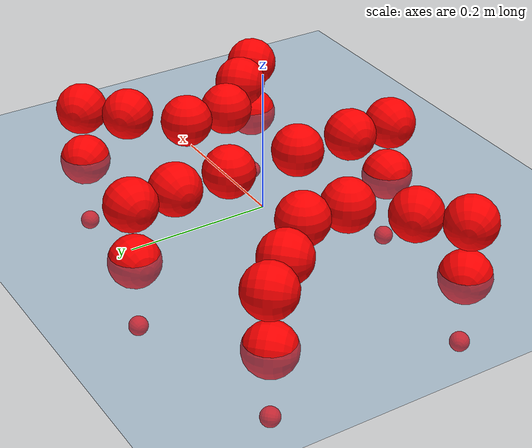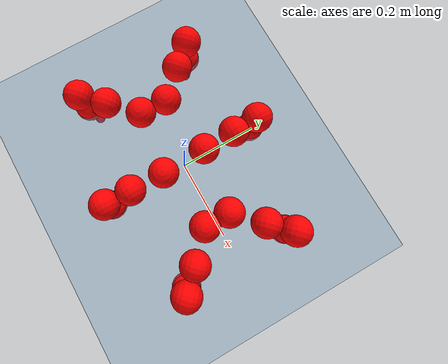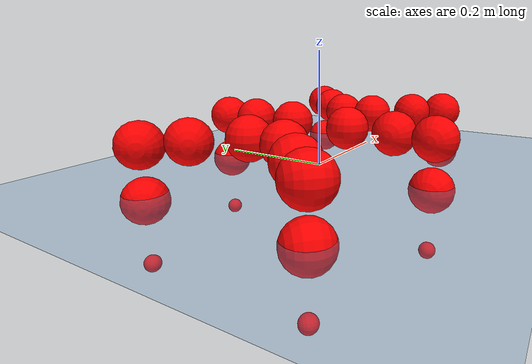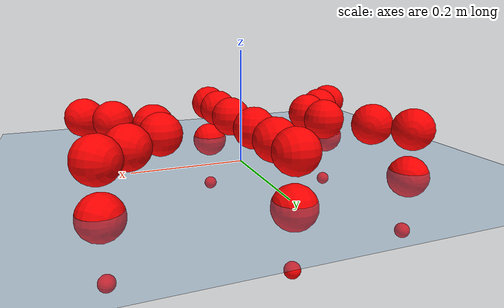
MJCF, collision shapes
<mujoco model="Golem">
  <compiler angle="radian" assetdir="assets" balanceinertia="true" inertiafromgeom="false"/>

  <option timestep="0.005" density="1.2" viscosity="2e-05"/>

  <size nkey="1"/>

  <visual>
    <quality shadowsize="8192"/>
    <map shadowclip="0.5"/>
  </visual>

  <default>
    <default class="/">
      <joint armature="0.01" damping="0.01" frictionloss="0.01"/>
      <geom contype="0" conaffinity="0" group="1" solref="-1000 -80"/>
      <site size="0.01 0.005 0.005" group="5"/>
      <general forcelimited="true" biastype="affine" gainprm="25" biasprm="0 -25 -0.5"/>
      <default class="visual">
        <geom type="mesh" group="2"/>
      </default>
      <default class="collision">
        <geom group="3"/>
      </default>
      <default class="foot">
        <geom size="0.01 0 0" condim="6" group="4" priority="1" solimp="0.015 1 0.01"/>
      </default>
      <default class="reward_collision_sphere">
        <geom group="5" rgba="1 0 0 1"/>
      </default>
    </default>
  </default>

  <asset>
    <texture type="skybox" colorspace="auto" name="//unnamed_texture_0" builtin="gradient" rgb1="0.95 0.95 0.95" rgb2="0.95 0.95 0.95" width="100" height="600"/>
    <texture type="2d" colorspace="auto" name="texplane" builtin="checker" rgb1="0.345 0.575 0.748" rgb2="0.345 0.575 0.748" markrgb="1 1 1" width="512" height="512"/>
    <material name="MatPlane" class="/" texture="texplane" texuniform="true" texrepeat="2 2" specular="0.9"/>
    <mesh name="body" class="/" file="body.stl" scale="0.001 0.001 0.001"/>
    <mesh name="coxa" class="/" file="coxa.stl" scale="0.001 0.001 0.001"/>
    <mesh name="femur" class="/" file="femur.stl" scale="0.001 0.001 0.001"/>
    <mesh name="tibia" class="/" file="tibia.stl" scale="0.001 0.001 0.001"/>
    <mesh name="tarsus" class="/" file="tarsus.stl" scale="0.001 0.001 0.001"/>
  </asset>

  <worldbody>
    <geom name="floor" class="/" size="100 100 0.125" type="plane" group="0" material="MatPlane"/>
    <light name="toplight_shadow" class="/" pos="0 0 5" dir="0.0990148 0.0990148 -0.990148" type="directional" ambient="0.04 0.04 0.04" diffuse="0.55 0.55 0.55" specular="0.12 0.12 0.12"/>
    <light name="toplight_fill" class="/" pos="0 0 5" dir="0.0990148 0.0990148 -0.990148" type="directional" castshadow="false" ambient="0.04 0.04 0.04" diffuse="0.3 0.3 0.3" specular="0.08 0.08 0.08"/>
    <body name="trunk" pos="-0.000400183 0.000271646 0.00030435" quat="1 -4.54226e-05 -5.42588e-05 0.000141535">
      <inertial pos="0.000511119 -0.00107397 -0.00154547" quat="0.999991 -0.000747427 0.00355932 0.00198022" mass="2.81933" diaginertia="0.00884855 0.00104364 0.0180074"/>
      <joint name="//unnamed_joint_0" type="free"/>
      <geom name="//unnamed_geom_1" class="/" pos="0 0 0.0716804" quat="1 0 0 0" type="mesh" rgba="0.9 0.9 0.9 1" mesh="body"/>
      <site name="imu" class="/" pos="0.127714 0.00222746 0.104882" size="0.00906779"/>
      <camera name="track" class="/" pos="0 -1.26505 0" quat="0.707107 0.707107 0 0" mode="trackcom"/>
      <camera name="ego_camera" class="/" pos="0.125815 0 0.112001" quat="-0.5 -0.5 0.5 0.5"/>
      <body name="coxa_RR" pos="-0.172701 -0.0531872 0.0730911" quat="0.382723 -2.8526e-05 -0.000111068 -0.923863">
        <inertial pos="-0.000437445 0.000811728 0.0005658" quat="1 9.18684e-05 0.000125691 4.53952e-05" mass="0.149514" diaginertia="0.00855455 0.00103333 0.0175673"/>
        <joint name="coxa_joint_RR" class="/" pos="0 0 0" axis="0.00513223 0.00454114 -0.999977" range="-3.13157 3.1365" armature="0.00922713" damping="0" frictionloss="0.00911797"/>
        <geom name="//unnamed_geom_2" class="/" type="mesh" rgba="0.2 0.2 0.2 1" mesh="coxa"/>
        <geom name="//unnamed_geom_3" class="reward_collision_sphere" size="0.0362712" pos="-0.0290342 0 0"/>
        <body name="femur_RR" pos="0.0587673 -0.000189938 -0.00117573" quat="0.499753 -0.500241 0.499881 0.500126">
          <inertial pos="-0.000303365 -8.5768e-06 0.000741116" quat="0.999999 -0.000154125 -0.000809602 0.00132837" mass="0.147114" diaginertia="0.0085485 0.000996747 0.0172332"/>
          <joint name="femur_joint_RR" class="/" pos="0 0 0" axis="-0.0046929 0.00512358 -0.999976" range="-3.13923 3.12271" armature="0.0090774" damping="0.000832956" frictionloss="0.00862113"/>
          <geom name="//unnamed_geom_4" class="/" type="mesh" rgba="0.9 0.9 0.9 1" mesh="femur"/>
          <geom name="//unnamed_geom_5" class="reward_collision_sphere" size="0.0362712"/>
          <body name="tibia_RR" pos="0.00120849 -0.0690033 -0.00111183" quat="-4.73243e-06 1 -1.56554e-07 3.7314e-06">
            <inertial pos="-0.000154699 -0.00144251 0.000108401" quat="0.999965 -0.00745205 0.00300902 -0.00249799" mass="0.149259" diaginertia="0.00861069 0.00101632 0.017658"/>
            <joint name="tibia_joint_RR" class="/" pos="0 0 0" axis="0.000342712 -0.000203519 1" range="-3.14548 3.14523" armature="0.00918841" damping="0" frictionloss="0.00949379"/>
            <geom name="//unnamed_geom_6" class="/" type="mesh" rgba="0.2 0.2 0.2 1" mesh="tibia"/>
            <geom name="//unnamed_geom_7" class="reward_collision_sphere" size="0.0362712"/>
            <body name="tarsus_RR" pos="0.0819408 -0.00153985 0.00021639" quat="1 -0.00035039 2.17741e-05 -0.000174605">
              <inertial pos="0.0581657 0.000470178 0.000206591" quat="0.49951 0.503587 0.495556 0.501313" mass="0.150435" diaginertia="0.00851368 0.00100953 0.0174545"/>
              <joint name="tarsus_joint_RR" class="/" pos="0 0 0" axis="-1.97252e-05 -0.000444225 1" range="-3.13305 3.13186" armature="0.00934022" damping="0.00677497" frictionloss="0.00924484"/>
              <geom name="//unnamed_geom_8" class="/" type="mesh" rgba="0.9 0.9 0.9 1" mesh="tarsus"/>
              <geom name="foot_1" class="foot" size="0.00867942" pos="0.108394 0 0" quat="0 -0.707107 0 0.707107"/>
              <geom name="//unnamed_geom_10" class="reward_collision_sphere" size="0.0362712"/>
              <geom name="//unnamed_geom_11" class="reward_collision_sphere" size="0.0136017" pos="0.104039 0 0"/>
              <site name="foot_1" class="foot" pos="0.108394 0 0" quat="0 -0.707107 0 0.707107" size="0.00906779"/>
            </body>
          </body>
        </body>
      </body>
      <body name="coxa_RM" pos="0.000183876 -0.0842085 0.0723154" quat="0.707535 0.000470516 0.000462717 -0.706678">
        <inertial pos="0.000116601 -0.000185383 -0.000486165" quat="1 0.00023818 -4.37323e-05 9.47679e-05" mass="0.150295" diaginertia="0.00854001 0.00102166 0.0176018"/>
        <joint name="coxa_joint_RM" class="/" pos="0 0 0" axis="0.000508327 0.00190132 -0.999998" range="-3.13295 3.13596" armature="0.00908731" damping="0.00943886" frictionloss="0.0086539"/>
        <geom name="//unnamed_geom_12" class="/" type="mesh" rgba="0.2 0.2 0.2 1" mesh="coxa"/>
        <geom name="//unnamed_geom_13" class="reward_collision_sphere" size="0.0362712" pos="-0.0290342 0 0"/>
        <body name="femur_RM" pos="0.0561479 -0.00177235 0.00048909" quat="0.49984 -0.500186 0.499955 0.500019">
          <inertial pos="0.00157361 0.000379026 -0.000124248" quat="0.999991 -0.000861579 -0.00308671 0.00267541" mass="0.146882" diaginertia="0.00823168 0.000997827 0.0169969"/>
          <joint name="femur_joint_RM" class="/" pos="0 0 0" axis="0.00056372 -0.000778797 -1" range="-3.14386 3.11233" armature="0.00886381" damping="0.00657146" frictionloss="0.00943669"/>
          <geom name="//unnamed_geom_14" class="/" type="mesh" rgba="0.9 0.9 0.9 1" mesh="femur"/>
          <geom name="//unnamed_geom_15" class="reward_collision_sphere" size="0.0362712"/>
          <body name="tibia_RM" pos="0.000836308 -0.0672047 -0.000325777" quat="-9.18104e-06 1 8.98554e-05 -0.000284663">
            <inertial pos="0.000636472 0.00191419 0.000428948" quat="0.999995 -0.00179248 0.00161193 0.00194579" mass="0.150678" diaginertia="0.00857177 0.00102279 0.0177764"/>
            <joint name="tibia_joint_RM" class="/" pos="0 0 0" axis="-0.00165328 -0.000446593 0.999999" range="-3.1431 3.12938" armature="0.00936301" damping="0.0141259" frictionloss="0.00900098"/>
            <geom name="//unnamed_geom_16" class="/" type="mesh" rgba="0.2 0.2 0.2 1" mesh="tibia"/>
            <geom name="//unnamed_geom_17" class="reward_collision_sphere" size="0.0362712"/>
            <body name="tarsus_RM" pos="0.0829418 -0.000670772 0.00044086" quat="1 4.41193e-05 4.43417e-05 1.15119e-06">
              <inertial pos="0.0589721 6.28218e-05 -0.000471842" quat="0.49933 0.499931 0.500291 0.500447" mass="0.152854" diaginertia="0.00848709 0.00101907 0.0180749"/>
              <joint name="tarsus_joint_RM" class="/" pos="0 0 0" axis="-0.00033537 -0.00306243 0.999995" stiffness="0.00111755" range="-3.14493 3.12574" armature="0.00891984" damping="0.00816177" frictionloss="0.008941"/>
              <geom name="//unnamed_geom_18" class="/" type="mesh" rgba="0.9 0.9 0.9 1" mesh="tarsus"/>
              <geom name="foot_2" class="foot" size="0.00898792" pos="0.108394 0 0" quat="0 -0.707107 0 0.707107"/>
              <geom name="//unnamed_geom_20" class="reward_collision_sphere" size="0.0362712"/>
              <geom name="//unnamed_geom_21" class="reward_collision_sphere" size="0.0136017" pos="0.104039 0 0"/>
              <site name="foot_2" class="foot" pos="0.108394 0 0" quat="0 -0.707107 0 0.707107" size="0.00906779"/>
            </body>
          </body>
        </body>
      </body>
      <body name="coxa_RF" pos="0.173288 -0.0530885 0.0732865" quat="0.923915 -0.000384621 -4.47845e-05 -0.382598">
        <inertial pos="0.000318741 -0.00147032 0.000531955" quat="0.999978 0.00475067 -0.00280346 0.00366386" mass="0.148298" diaginertia="0.00859878 0.00101441 0.0176391"/>
        <joint name="coxa_joint_RF" class="/" pos="0 0 0" axis="-0.000323992 0.000681477 -1" range="-3.10807 3.12132" armature="0.00877443" damping="0" frictionloss="0.00921118"/>
        <geom name="//unnamed_geom_22" class="/" type="mesh" rgba="0.2 0.2 0.2 1" mesh="coxa"/>
        <geom name="//unnamed_geom_23" class="reward_collision_sphere" size="0.0362712" pos="-0.0290342 0 0"/>
        <body name="femur_RF" pos="0.058376 0.00132905 -0.000222615" quat="0.499974 -0.500018 0.499966 0.500042">
          <inertial pos="6.32546e-05 0.00123394 1.79201e-05" quat="0.999996 -0.00265881 0.0011225 -0.000409966" mass="0.149919" diaginertia="0.00877904 0.00103221 0.0181669"/>
          <joint name="femur_joint_RF" class="/" pos="0 0 0" axis="0.000254972 0.00177811 -0.999998" range="-3.14563 3.15686" armature="0.00898771" damping="0.0100723" frictionloss="0.00949529"/>
          <geom name="//unnamed_geom_24" class="/" type="mesh" rgba="0.9 0.9 0.9 1" mesh="femur"/>
          <geom name="//unnamed_geom_25" class="reward_collision_sphere" size="0.0362712"/>
          <body name="tibia_RF" pos="0.000773313 -0.0680886 -0.000607042" quat="-3.34131e-05 1 1.89162e-05 -2.37972e-05">
            <inertial pos="0.000347329 0.000220817 -0.00186565" quat="0.99999 0.00390196 0.00198296 0.0013537" mass="0.151169" diaginertia="0.0085921 0.00100473 0.0178611"/>
            <joint name="tibia_joint_RF" class="/" pos="0 0 0" axis="0.00197409 -0.0038498 0.999991" stiffness="0.00102007" range="-3.13371 3.12202" armature="0.00890477" damping="0.0121794" frictionloss="0.00872931"/>
            <geom name="//unnamed_geom_26" class="/" type="mesh" rgba="0.2 0.2 0.2 1" mesh="tibia"/>
            <geom name="//unnamed_geom_27" class="reward_collision_sphere" size="0.0362712"/>
            <body name="tarsus_RF" pos="0.085657 0.000992594 -0.000849407" quat="1 -1.23966e-05 5.86841e-06 -0.000120056">
              <inertial pos="0.0587242 9.94265e-05 -0.000502367" quat="0.499619 0.501183 0.499903 0.499293" mass="0.147681" diaginertia="0.00849395 0.000990183 0.0171087"/>
              <joint name="tarsus_joint_RF" class="/" pos="0 0 0" axis="0.0014688 0.00327664 0.999994" stiffness="0.0231882" range="-3.13277 3.14146" armature="0.00902871" damping="0" frictionloss="0.00917559"/>
              <geom name="//unnamed_geom_28" class="/" type="mesh" rgba="0.9 0.9 0.9 1" mesh="tarsus"/>
              <geom name="foot_3" class="foot" size="0.00906301" pos="0.108394 0 0" quat="0 -0.707107 0 0.707107"/>
              <geom name="//unnamed_geom_30" class="reward_collision_sphere" size="0.0362712"/>
              <geom name="//unnamed_geom_31" class="reward_collision_sphere" size="0.0136017" pos="0.104039 0 0"/>
              <site name="foot_3" class="foot" pos="0.108394 0 0" quat="0 -0.707107 0 0.707107" size="0.00906779"/>
            </body>
          </body>
        </body>
      </body>
      <body name="coxa_LR" pos="-0.171083 0.0547016 0.0735444" quat="0.382764 0.000171754 0.000172137 0.923846">
        <inertial pos="0.000173862 -0.000778645 0.00101852" quat="0.999999 -0.00107923 0.000180347 2.94326e-06" mass="0.149683" diaginertia="0.00869381 0.00101155 0.0171974"/>
        <joint name="coxa_joint_LR" class="/" pos="0 0 0" axis="-0.00205011 2.74849e-05 -0.999998" range="-3.12427 3.11869" armature="0.00861408" damping="0.00578426" frictionloss="0.00910938"/>
        <geom name="//unnamed_geom_32" class="/" type="mesh" rgba="0.2 0.2 0.2 1" mesh="coxa"/>
        <geom name="//unnamed_geom_33" class="reward_collision_sphere" size="0.0362712" pos="-0.0290342 0 0"/>
        <body name="femur_LR" pos="0.0584619 -0.0025842 -0.000517081" quat="0.49974 -0.500163 0.499695 0.500402">
          <inertial pos="0.000314614 -0.00223548 0.000372236" quat="1 -0.000112938 -1.55132e-05 0.000259375" mass="0.149823" diaginertia="0.00832582 0.00101102 0.017239"/>
          <joint name="femur_joint_LR" class="/" pos="0 0 0" axis="0.0013149 0.00214921 0.999997" stiffness="0.00030456" range="-3.11742 3.13811" armature="0.00882296" damping="0" frictionloss="0.00903996"/>
          <geom name="//unnamed_geom_34" class="/" type="mesh" rgba="0.9 0.9 0.9 1" mesh="femur"/>
          <geom name="//unnamed_geom_35" class="reward_collision_sphere" size="0.0362712"/>
          <body name="tibia_LR" pos="0.0018664 -0.0690712 -0.00350762" quat="-0.00019831 1 -0.000131799 0.000286911">
            <inertial pos="-0.000942819 -0.000430828 0.000983113" quat="0.999989 0.0010623 -0.000200394 0.00448732" mass="0.149914" diaginertia="0.00842642 0.00101927 0.0176196"/>
            <joint name="tibia_joint_LR" class="/" pos="0 0 0" axis="-0.00286329 0.00149377 -0.999995" stiffness="0.00125585" range="-3.15522 3.164" armature="0.00874539" damping="0" frictionloss="0.00904116"/>
            <geom name="//unnamed_geom_36" class="/" type="mesh" rgba="0.2 0.2 0.2 1" mesh="tibia"/>
            <geom name="//unnamed_geom_37" class="reward_collision_sphere" size="0.0362712"/>
            <body name="tarsus_LR" pos="0.0854277 -2.96003e-05 -0.000756057" quat="1 -5.05582e-06 4.79505e-06 -4.81212e-05">
              <inertial pos="0.0602168 -0.00124082 -0.000999723" quat="0.495865 0.502298 0.500867 0.500945" mass="0.148758" diaginertia="0.00839086 0.00102387 0.0173893"/>
              <joint name="tarsus_joint_LR" class="/" pos="0 0 0" axis="0.00298616 -0.00930158 -0.999952" range="-3.11825 3.151" armature="0.00903751" damping="0" frictionloss="0.00935093"/>
              <geom name="//unnamed_geom_38" class="/" type="mesh" rgba="0.9 0.9 0.9 1" mesh="tarsus"/>
              <geom name="foot_4" class="foot" size="0.0097199" pos="0.108394 0 0" quat="0.707107 0 -0.707107 0"/>
              <geom name="//unnamed_geom_40" class="reward_collision_sphere" size="0.0362712"/>
              <geom name="//unnamed_geom_41" class="reward_collision_sphere" size="0.0136017" pos="0.104039 0 0"/>
              <site name="foot_4" class="foot" pos="0.108394 0 0" quat="0.707107 0 -0.707107 0" size="0.00906779"/>
            </body>
          </body>
        </body>
      </body>
      <body name="coxa_LM" pos="-0.00281619 0.0832152 0.0739067" quat="0.707118 1.27056e-05 -0.000127527 0.707096">
        <inertial pos="0.000844991 -3.39162e-05 -0.000590486" quat="0.999988 0.0018609 7.60636e-05 -0.00447636" mass="0.151469" diaginertia="0.00860476 0.00103494 0.0180366"/>
        <joint name="coxa_joint_LM" class="/" pos="0 0 0" axis="0.0106598 -1.7691e-05 -0.999943" range="-3.14458 3.13534" armature="0.00875029" damping="0.00632572" frictionloss="0.00881177"/>
        <geom name="//unnamed_geom_42" class="/" type="mesh" rgba="0.2 0.2 0.2 1" mesh="coxa"/>
        <geom name="//unnamed_geom_43" class="reward_collision_sphere" size="0.0362712" pos="-0.0290342 0 0"/>
        <body name="femur_LM" pos="0.0525688 0.00189903 -0.000310154" quat="0.500042 -0.499928 0.499891 0.500138">
          <inertial pos="-0.000198539 -0.000253022 0.000551471" quat="0.999999 0.000693731 0.000732927 3.91942e-05" mass="0.147749" diaginertia="0.00838722 0.00103663 0.017831"/>
          <joint name="femur_joint_LM" class="/" pos="0 0 0" axis="-0.00224173 -0.00109654 0.999997" stiffness="1.52792e-05" range="-3.15101 3.14767" armature="0.00893127" damping="0" frictionloss="0.0091466"/>
          <geom name="//unnamed_geom_44" class="/" type="mesh" rgba="0.9 0.9 0.9 1" mesh="femur"/>
          <geom name="//unnamed_geom_45" class="reward_collision_sphere" size="0.0362712"/>
          <body name="tibia_LM" pos="0.00089029 -0.0653673 0.00205286" quat="0.000298672 1 -9.20219e-05 -0.000158377">
            <inertial pos="-0.000645684 -0.00120737 -0.000883757" quat="0.999983 -0.00206156 -0.00111907 0.00527607" mass="0.148139" diaginertia="0.00845663 0.00102953 0.0176291"/>
            <joint name="tibia_joint_LM" class="/" pos="0 0 0" axis="-0.00126116 -0.0014378 -0.999998" range="-3.14266 3.1397" armature="0.00897429" damping="0.00123066" frictionloss="0.00884084"/>
            <geom name="//unnamed_geom_46" class="/" type="mesh" rgba="0.2 0.2 0.2 1" mesh="tibia"/>
            <geom name="//unnamed_geom_47" class="reward_collision_sphere" size="0.0362712"/>
            <body name="tarsus_LM" pos="0.0864386 -0.000687314 -0.000819652" quat="1 -0.000306956 -8.56586e-05 0.000195832">
              <inertial pos="0.05784 0.000509254 -0.000829702" quat="0.499127 0.505105 0.497381 0.498351" mass="0.149995" diaginertia="0.00864115 0.00101801 0.0175173"/>
              <joint name="tarsus_joint_LM" class="/" pos="0 0 0" axis="0.00526756 0.00382744 -0.999979" range="-3.1292 3.13193" armature="0.00900879" damping="0.00214085" frictionloss="0.00957792"/>
              <geom name="//unnamed_geom_48" class="/" type="mesh" rgba="0.9 0.9 0.9 1" mesh="tarsus"/>
              <geom name="foot_5" class="foot" size="0.00904453" pos="0.108394 0 0" quat="0.707107 0 -0.707107 0"/>
              <geom name="//unnamed_geom_50" class="reward_collision_sphere" size="0.0362712"/>
              <geom name="//unnamed_geom_51" class="reward_collision_sphere" size="0.0136017" pos="0.104039 0 0"/>
              <site name="foot_5" class="foot" pos="0.108394 0 0" quat="0.707107 0 -0.707107 0" size="0.00906779"/>
            </body>
          </body>
        </body>
      </body>
      <body name="coxa_LF" pos="0.173333 0.0522603 0.0717526" quat="0.923905 -7.12288e-05 2.71691e-05 0.382621">
        <inertial pos="0.000322049 -0.000190069 0.00103609" quat="1 -0.000605819 0.000267195 0.000107251" mass="0.150193" diaginertia="0.00837368 0.00102985 0.0177211"/>
        <joint name="coxa_joint_LF" class="/" pos="0 0 0" axis="0.00558988 -0.00577088 -0.999968" range="-3.14664 3.1389" armature="0.00883448" damping="0.00880924" frictionloss="0.00997416"/>
        <geom name="//unnamed_geom_52" class="/" type="mesh" rgba="0.2 0.2 0.2 1" mesh="coxa"/>
        <geom name="//unnamed_geom_53" class="reward_collision_sphere" size="0.0362712" pos="-0.0290342 0 0"/>
        <body name="femur_LF" pos="0.0576637 0.000254532 0.000287663" quat="0.499987 -0.499958 0.50003 0.500024">
          <inertial pos="-0.00193685 0.000602513 0.00199504" quat="0.999999 -0.00129681 -0.000930375 -0.000297529" mass="0.150759" diaginertia="0.00861675 0.00101825 0.0176512"/>
          <joint name="femur_joint_LF" class="/" pos="0 0 0" axis="-0.00154902 0.000325904 0.999999" range="-3.14232 3.13761" armature="0.00884486" damping="0" frictionloss="0.00896344"/>
          <geom name="//unnamed_geom_54" class="/" type="mesh" rgba="0.9 0.9 0.9 1" mesh="femur"/>
          <geom name="//unnamed_geom_55" class="reward_collision_sphere" size="0.0362712"/>
          <body name="tibia_LF" pos="-0.000554921 -0.0680525 0.00086636" quat="-0.000118898 1 0.000222403 0.000301226">
            <inertial pos="0.000944136 -0.00185212 -0.000695652" quat="1 0.00014172 -0.000169514 0.000111744" mass="0.143532" diaginertia="0.00809313 0.00098405 0.0169978"/>
            <joint name="tibia_joint_LF" class="/" pos="0 0 0" axis="0.00154895 0.00431198 -0.99999" stiffness="0.00194544" range="-3.1343 3.14971" armature="0.00898762" damping="0" frictionloss="0.00891936"/>
            <geom name="//unnamed_geom_56" class="/" type="mesh" rgba="0.2 0.2 0.2 1" mesh="tibia"/>
            <geom name="//unnamed_geom_57" class="reward_collision_sphere" size="0.0362712"/>
            <body name="tarsus_LF" pos="0.083973 0.000764065 0.00119563" quat="1 -1.77873e-05 -0.000154155 7.40599e-05">
              <inertial pos="0.0584742 -0.000297001 -0.000437593" quat="0.500287 0.49969 0.501463 0.498556" mass="0.145078" diaginertia="0.0081905 0.00098241 0.016992"/>
              <joint name="tarsus_joint_LF" class="/" pos="0 0 0" axis="-0.00505591 0.00219278 -0.999985" range="-3.13798 3.14158" armature="0.00925281" damping="0.0148773" frictionloss="0.0082596"/>
              <geom name="//unnamed_geom_58" class="/" type="mesh" rgba="0.9 0.9 0.9 1" mesh="tarsus"/>
              <geom name="foot_6" class="foot" size="0.00871194" pos="0.108394 0 0" quat="0.707107 0 -0.707107 0"/>
              <geom name="//unnamed_geom_60" class="reward_collision_sphere" size="0.0362712"/>
              <geom name="//unnamed_geom_61" class="reward_collision_sphere" size="0.0136017" pos="0.104039 0 0"/>
              <site name="foot_6" class="foot" pos="0.108394 0 0" quat="0.707107 0 -0.707107 0" size="0.00906779"/>
            </body>
          </body>
        </body>
      </body>
    </body>
  </worldbody>

  <contact>
    <pair class="/" geom1="floor" geom2="foot_1" name="//unnamed_contact_0"/>
    <pair class="/" geom1="floor" geom2="foot_2" name="//unnamed_contact_1"/>
    <pair class="/" geom1="floor" geom2="foot_3" name="//unnamed_contact_2"/>
    <pair class="/" geom1="floor" geom2="foot_4" name="//unnamed_contact_3"/>
    <pair class="/" geom1="floor" geom2="foot_5" name="//unnamed_contact_4"/>
    <pair class="/" geom1="floor" geom2="foot_6" name="//unnamed_contact_5"/>
  </contact>

  <actuator>
    <general name="coxa_joint_RR" class="/" joint="coxa_joint_RR" forcerange="-6.83916 6.83916" gainprm="21.9851" biasprm="0 -21.9851 -0.485909"/>
    <general name="femur_joint_RR" class="/" joint="femur_joint_RR" forcerange="-6.50464 6.50464" gainprm="21.9851" biasprm="0 -21.9851 -0.485909"/>
    <general name="tibia_joint_RR" class="/" joint="tibia_joint_RR" forcerange="-6.76473 6.76473" gainprm="21.9851" biasprm="0 -21.9851 -0.485909"/>
    <general name="tarsus_joint_RR" class="/" joint="tarsus_joint_RR" forcerange="-6.87013 6.87013" gainprm="21.9851" biasprm="0 -21.9851 -0.485909"/>
    <general name="coxa_joint_RM" class="/" joint="coxa_joint_RM" forcerange="-6.74576 6.74576" gainprm="21.9851" biasprm="0 -21.9851 -0.485909"/>
    <general name="femur_joint_RM" class="/" joint="femur_joint_RM" forcerange="-6.6036 6.6036" gainprm="21.9851" biasprm="0 -21.9851 -0.485909"/>
    <general name="tibia_joint_RM" class="/" joint="tibia_joint_RM" forcerange="-6.65442 6.65442" gainprm="21.9851" biasprm="0 -21.9851 -0.485909"/>
    <general name="tarsus_joint_RM" class="/" joint="tarsus_joint_RM" forcerange="-7.02879 7.02879" gainprm="21.9851" biasprm="0 -21.9851 -0.485909"/>
    <general name="coxa_joint_RF" class="/" joint="coxa_joint_RF" forcerange="-6.41685 6.41685" gainprm="21.9851" biasprm="0 -21.9851 -0.485909"/>
    <general name="femur_joint_RF" class="/" joint="femur_joint_RF" forcerange="-6.2632 6.2632" gainprm="21.9851" biasprm="0 -21.9851 -0.485909"/>
    <general name="tibia_joint_RF" class="/" joint="tibia_joint_RF" forcerange="-6.52118 6.52118" gainprm="21.9851" biasprm="0 -21.9851 -0.485909"/>
    <general name="tarsus_joint_RF" class="/" joint="tarsus_joint_RF" forcerange="-6.66089 6.66089" gainprm="21.9851" biasprm="0 -21.9851 -0.485909"/>
    <general name="coxa_joint_LR" class="/" joint="coxa_joint_LR" forcerange="-6.7776 6.7776" gainprm="21.9851" biasprm="0 -21.9851 -0.485909"/>
    <general name="femur_joint_LR" class="/" joint="femur_joint_LR" forcerange="-6.56532 6.56532" gainprm="21.9851" biasprm="0 -21.9851 -0.485909"/>
    <general name="tibia_joint_LR" class="/" joint="tibia_joint_LR" forcerange="-6.64897 6.64897" gainprm="21.9851" biasprm="0 -21.9851 -0.485909"/>
    <general name="tarsus_joint_LR" class="/" joint="tarsus_joint_LR" forcerange="-6.77212 6.77212" gainprm="21.9851" biasprm="0 -21.9851 -0.485909"/>
    <general name="coxa_joint_LM" class="/" joint="coxa_joint_LM" forcerange="-6.54631 6.54631" gainprm="21.9851" biasprm="0 -21.9851 -0.485909"/>
    <general name="femur_joint_LM" class="/" joint="femur_joint_LM" forcerange="-6.72307 6.72307" gainprm="21.9851" biasprm="0 -21.9851 -0.485909"/>
    <general name="tibia_joint_LM" class="/" joint="tibia_joint_LM" forcerange="-6.85473 6.85473" gainprm="21.9851" biasprm="0 -21.9851 -0.485909"/>
    <general name="tarsus_joint_LM" class="/" joint="tarsus_joint_LM" forcerange="-6.59742 6.59742" gainprm="21.9851" biasprm="0 -21.9851 -0.485909"/>
    <general name="coxa_joint_LF" class="/" joint="coxa_joint_LF" forcerange="-6.38894 6.38894" gainprm="21.9851" biasprm="0 -21.9851 -0.485909"/>
    <general name="femur_joint_LF" class="/" joint="femur_joint_LF" forcerange="-6.77352 6.77352" gainprm="21.9851" biasprm="0 -21.9851 -0.485909"/>
    <general name="tibia_joint_LF" class="/" joint="tibia_joint_LF" forcerange="-6.46027 6.46027" gainprm="21.9851" biasprm="0 -21.9851 -0.485909"/>
    <general name="tarsus_joint_LF" class="/" joint="tarsus_joint_LF" forcerange="-6.83744 6.83744" gainprm="21.9851" biasprm="0 -21.9851 -0.485909"/>
  </actuator>

  <sensor>
    <gyro site="imu" name="imu_angular_velocity"/>
    <velocimeter site="imu" name="imu_linear_velocity"/>
    <framelinvel objtype="site" objname="foot_1" name="foot_1_global_linear_velocity"/>
    <framelinvel objtype="site" objname="foot_2" name="foot_2_global_linear_velocity"/>
    <framelinvel objtype="site" objname="foot_3" name="foot_3_global_linear_velocity"/>
    <framelinvel objtype="site" objname="foot_4" name="foot_4_global_linear_velocity"/>
    <framelinvel objtype="site" objname="foot_5" name="foot_5_global_linear_velocity"/>
    <framelinvel objtype="site" objname="foot_6" name="foot_6_global_linear_velocity"/>
  </sensor>

  <keyframe>
    <key name="home" qpos="0 0 0.1457 1 0 0 0 0 0 0 0 0 0 0 0 0 0 0 0 0 0 0 0 0 0 0 0 0 0 0 0"/>
  </keyframe>
</mujoco>
